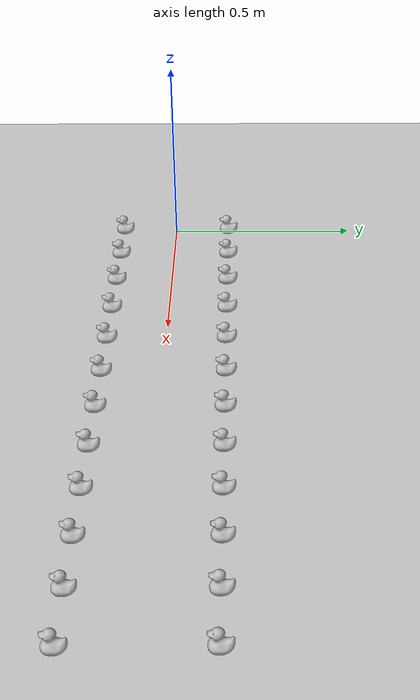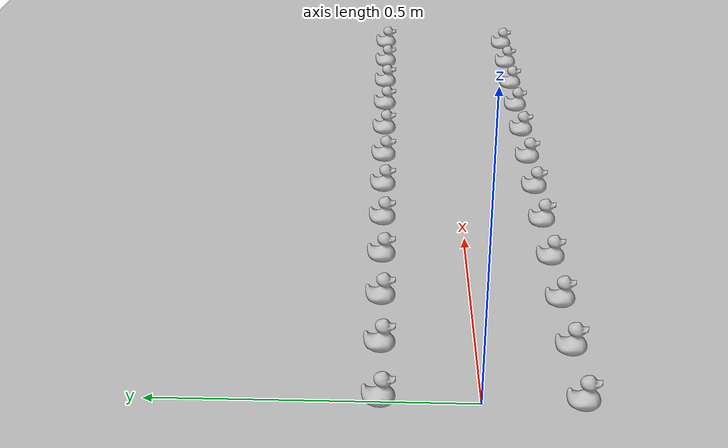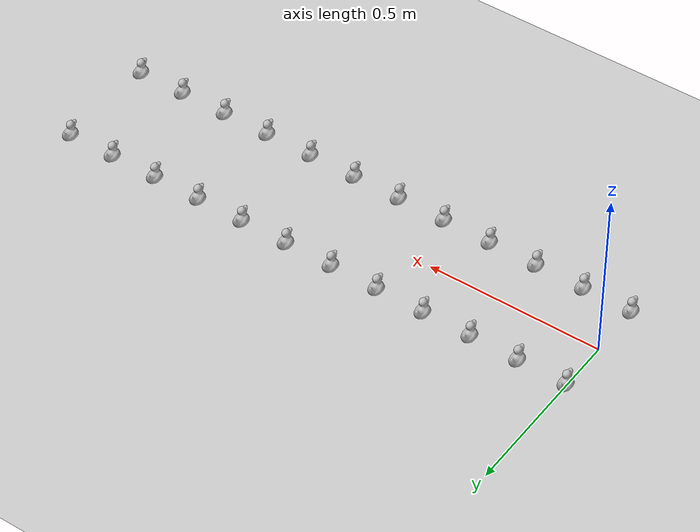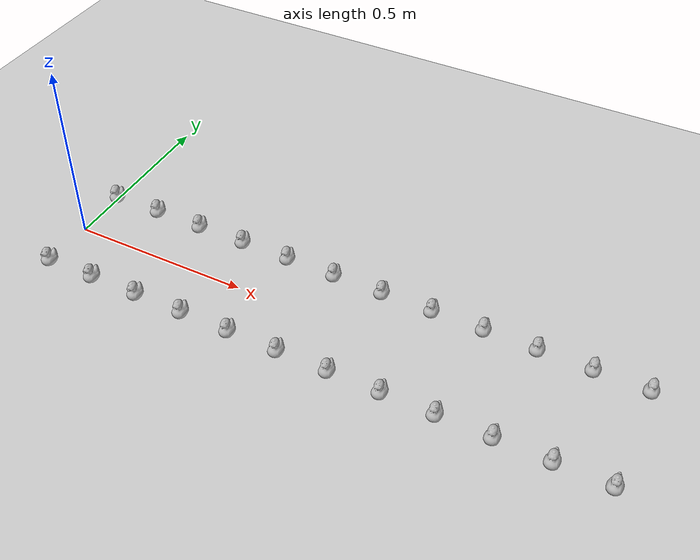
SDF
<sdf version='1.9'>
  <world name='easy'>
    <physics name='1ms' type='ignored'>
      <max_step_size>0.001</max_step_size>
      <real_time_factor>1</real_time_factor>
      <real_time_update_rate>1000</real_time_update_rate>
    </physics>
    <plugin name='gz::sim::systems::Physics' filename='ignition-gazebo-physics-system'/>
    <plugin name='gz::sim::systems::UserCommands' filename='ignition-gazebo-user-commands-system'/>
    <plugin name='gz::sim::systems::SceneBroadcaster' filename='ignition-gazebo-scene-broadcaster-system'/>
    <plugin name='gz::sim::systems::Contact' filename='ignition-gazebo-contact-system'/>
    <gravity>0 0 -9.8</gravity>
    <magnetic_field>6e-06 2.3e-05 -4.2e-05</magnetic_field>
    <atmosphere type='adiabatic'/>
    <scene>
      <ambient>0.4 0.4 0.4 1</ambient>
      <background>0.7 0.7 0.7 1</background>
      <shadows>true</shadows>
    </scene>
    <model name='ground_plane'>
      <static>true</static>
      <link name='link'>
        <collision name='collision'>
          <geometry>
            <plane>
              <normal>0 0 1</normal>
              <size>100 100</size>
            </plane>
          </geometry>
          <surface>
            <friction>
              <ode/>
            </friction>
            <bounce/>
            <contact/>
          </surface>
        </collision>
        <visual name='visual'>
          <geometry>
            <plane>
              <normal>0 0 1</normal>
              <size>100 100</size>
            </plane>
          </geometry>
          <material>
            <ambient>0.8 0.8 0.8 1</ambient>
            <diffuse>0.8 0.8 0.8 1</diffuse>
            <specular>0.8 0.8 0.8 1</specular>
          </material>
        </visual>
        <pose>0 0 0 0 -0 0</pose>
        <inertial>
          <pose>0 0 0 0 -0 0</pose>
          <mass>1</mass>
          <inertia>
            <ixx>1</ixx>
            <ixy>0</ixy>
            <ixz>0</ixz>
            <iyy>1</iyy>
            <iyz>0</iyz>
            <izz>1</izz>
          </inertia>
        </inertial>
        <enable_wind>false</enable_wind>
      </link>
      <pose>0 0 0 0 -0 0</pose>
      <self_collide>false</self_collide>
    </model>

    <include>
      <name>duck0</name>
      <uri>
        package://foxy_description/assets/duck/duck.sdf
      </uri>
      <pose>0.0000 0.15 0 0 0 0</pose>
    </include>
    <include>
      <name>duck0_r</name>
      <uri>
        package://foxy_description/assets/duck/duck.sdf
      </uri>
      <pose>0.0000 -0.15 0 0 0 0</pose>
    </include>

    <include>
      <name>duck1</name>
      <uri>
        package://foxy_description/assets/duck/duck.sdf
      </uri>
      <pose>0.1400 0.15 0 0 0 0</pose>
    </include>
    <include>
      <name>duck1_r</name>
      <uri>
        package://foxy_description/assets/duck/duck.sdf
      </uri>
      <pose>0.1400 -0.15 0 0 0 0</pose>
    </include>

    <include>
      <name>duck2</name>
      <uri>
        package://foxy_description/assets/duck/duck.sdf
      </uri>
      <pose>0.2800 0.15 0 0 0 0</pose>
    </include>
    <include>
      <name>duck2_r</name>
      <uri>
        package://foxy_description/assets/duck/duck.sdf
      </uri>
      <pose>0.2800 -0.15 0 0 0 0</pose>
    </include>

    <include>
      <name>duck3</name>
      <uri>
        package://foxy_description/assets/duck/duck.sdf
      </uri>
      <pose>0.4200 0.15 0 0 0 0</pose>
    </include>
    <include>
      <name>duck3_r</name>
      <uri>
        package://foxy_description/assets/duck/duck.sdf
      </uri>
      <pose>0.4200 -0.15 0 0 0 0</pose>
    </include>

    <include>
      <name>duck4</name>
      <uri>
        package://foxy_description/assets/duck/duck.sdf
      </uri>
      <pose>0.5600 0.15 0 0 0 0</pose>
    </include>
    <include>
      <name>duck4_r</name>
      <uri>
        package://foxy_description/assets/duck/duck.sdf
      </uri>
      <pose>0.5600 -0.15 0 0 0 0</pose>
    </include>

    <include>
      <name>duck5</name>
      <uri>
        package://foxy_description/assets/duck/duck.sdf
      </uri>
      <pose>0.7000 0.15 0 0 0 0</pose>
    </include>
    <include>
      <name>duck5_r</name>
      <uri>
        package://foxy_description/assets/duck/duck.sdf
      </uri>
      <pose>0.7000 -0.15 0 0 0 0</pose>
    </include>

    <include>
      <name>duck6</name>
      <uri>
        package://foxy_description/assets/duck/duck.sdf
      </uri>
      <pose>0.8400 0.15 0 0 0 0</pose>
    </include>
    <include>
      <name>duck6_r</name>
      <uri>
        package://foxy_description/assets/duck/duck.sdf
      </uri>
      <pose>0.8400 -0.15 0 0 0 0</pose>
    </include>

    <include>
      <name>duck7</name>
      <uri>
        package://foxy_description/assets/duck/duck.sdf
      </uri>
      <pose>0.9800 0.15 0 0 0 0</pose>
    </include>
    <include>
      <name>duck7_r</name>
      <uri>
        package://foxy_description/assets/duck/duck.sdf
      </uri>
      <pose>0.9800 -0.15 0 0 0 0</pose>
    </include>

    <include>
      <name>duck8</name>
      <uri>
        package://foxy_description/assets/duck/duck.sdf
      </uri>
      <pose>1.1200 0.15 0 0 0 0</pose>
    </include>
    <include>
      <name>duck8_r</name>
      <uri>
        package://foxy_description/assets/duck/duck.sdf
      </uri>
      <pose>1.1200 -0.15 0 0 0 0</pose>
    </include>

    <include>
      <name>duck9</name>
      <uri>
        package://foxy_description/assets/duck/duck.sdf
      </uri>
      <pose>1.2600 0.15 0 0 0 0</pose>
    </include>
    <include>
      <name>duck9_r</name>
      <uri>
        package://foxy_description/assets/duck/duck.sdf
      </uri>
      <pose>1.2600 -0.15 0 0 0 0</pose>
    </include>

    <include>
      <name>duck10</name>
      <uri>
        package://foxy_description/assets/duck/duck.sdf
      </uri>
      <pose>1.4000 0.15 0 0 0 0</pose>
    </include>
    <include>
      <name>duck10_r</name>
      <uri>
        package://foxy_description/assets/duck/duck.sdf
      </uri>
      <pose>1.4000 -0.15 0 0 0 0</pose>
    </include>

    <include>
      <name>duck11</name>
      <uri>
        package://foxy_description/assets/duck/duck.sdf
      </uri>
      <pose>1.5400 0.15 0 0 0 0</pose>
    </include>
    <include>
      <name>duck11_r</name>
      <uri>
        package://foxy_description/assets/duck/duck.sdf
      </uri>
      <pose>1.5400 -0.15 0 0 0 0</pose>
    </include>

    <light name='sun' type='directional'>
      <pose>0 0 10 0 -0 0</pose>
      <cast_shadows>true</cast_shadows>
      <intensity>1</intensity>
      <direction>-0.5 0.1 -0.9</direction>
      <diffuse>0.8 0.8 0.8 1</diffuse>
      <specular>0.2 0.2 0.2 1</specular>
      <attenuation>
        <range>1000</range>
        <linear>0.01</linear>
        <constant>0.90000000000000002</constant>
        <quadratic>0.001</quadratic>
      </attenuation>
      <spot>
        <inner_angle>0</inner_angle>
        <outer_angle>0</outer_angle>
        <falloff>0</falloff>
      </spot>
    </light>
  </world>
</sdf>

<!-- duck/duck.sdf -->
<sdf version="1.6">
  <model name="duck">
    <static>false</static>
    <link name="link">
      <visual name="visual">
        <geometry>
          <mesh>
            <uri>model://foxy_description/assets/duck/duck.dae</uri>
          </mesh>
        </geometry>
      </visual>
      <collision name="collision">
        <pose>0 0 0.026 0 0 0</pose>
        <geometry>
          <box>
            <size>0.052 0.052 0.052</size>
          </box>
        </geometry>
      </collision>
    </link>
  </model>
</sdf>
